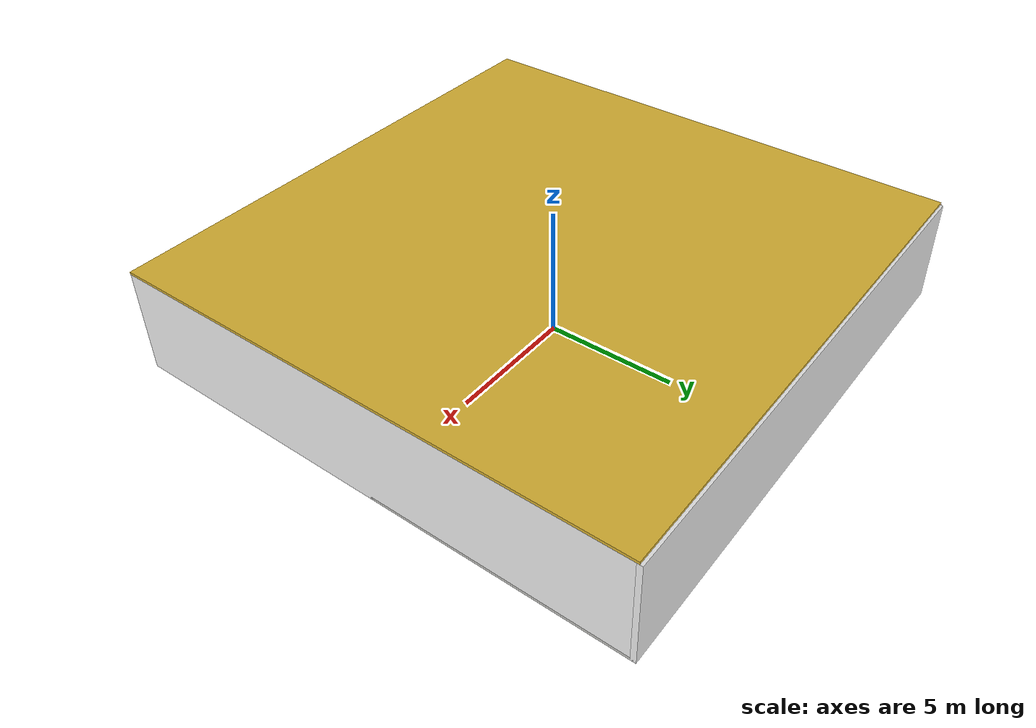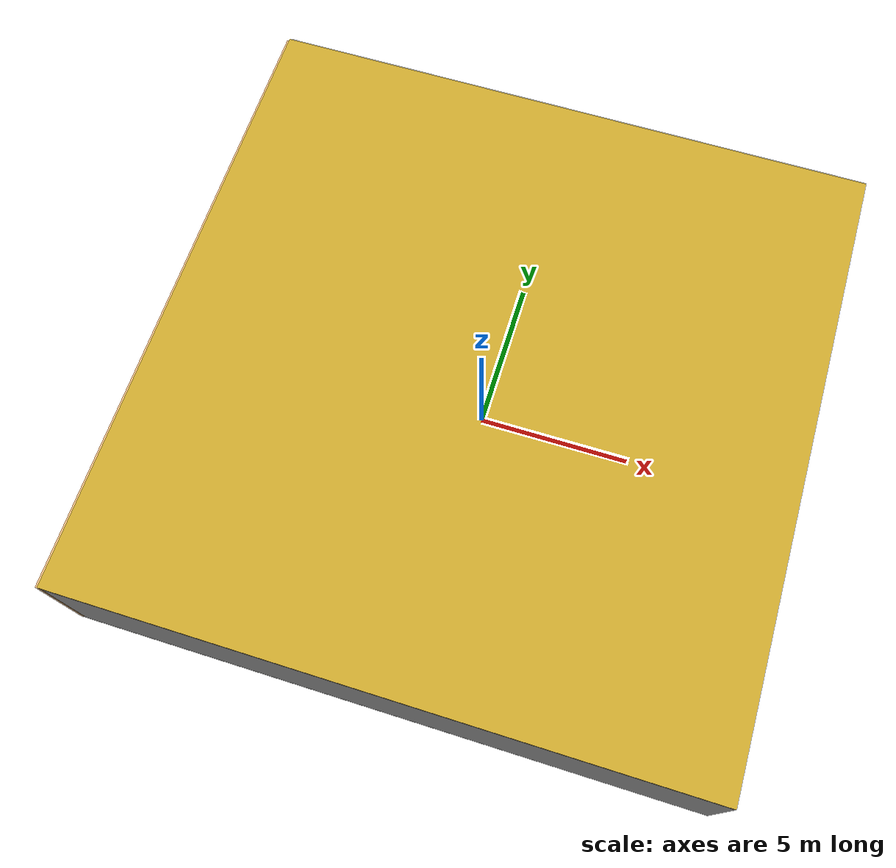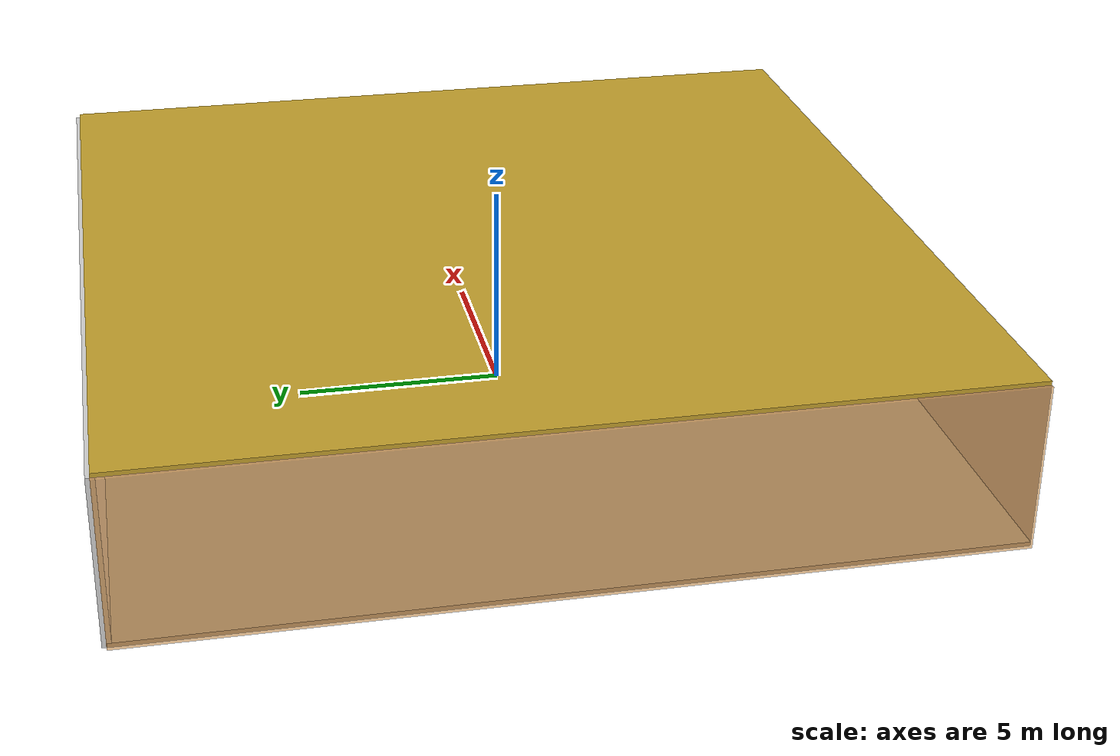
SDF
<sdf version="1.4">
 <world name="default">
  <physics type="ode">
   <max_step_size>0.001</max_step_size>
   <real_time_factor>1</real_time_factor>
   <real_time_update_rate>1000</real_time_update_rate>
   <gravity>0 0 -9.8</gravity>
  </physics>
  <scene><ambient>0.4 0.4 0.4 1</ambient><background>0.7 0.7 0.7 1</background><shadows>1</shadows></scene>
  <model name="Surrounding">
   <static>1</static>
   <link name="Ceiling">
    <collision name="Ceiling_Collision"><geometry><box><size>20 20 0.1</size></box></geometry></collision>
    <visual name="Ceiling_Visual">
     <geometry><box><size>20 20 0.1</size></box></geometry>
     <material>
      <script><uri>file://media/materials/scripts/gazebo.material</uri><name>Gazebo/Gold</name></script>
     </material>
    </visual>
    <pose>0 0 4.05 0 0 0</pose>
   </link>
   <link name="Wall_South">
    <collision name="Wall_South_Collision">
     <geometry><box><size>20 0 4</size></box></geometry>
     <pose>0 0 2 0 -0 0</pose>
    </collision>
    <visual name="Wall_South_Visual">
     <pose>0 0 2 0 -0 0</pose>
     <geometry><box><size>20 0 4</size></box></geometry>
     <material>
      <script><uri>file://media/materials/scripts/gazebo.material</uri><name>Gazebo/Pioneer2Body</name></script>
     </material>
    </visual>
    <velocity_decay><linear>0</linear><angular>0</angular></velocity_decay>
    <pose>0 -10 0 0 -0 0</pose>
   </link>
   <link name="Wall_East">
    <collision name="Wall_21_Collision">
     <geometry><box><size>20 0 4</size></box></geometry>
     <pose>0 0 2 0 -0 0</pose>
    </collision>
    <visual name="Wall_21_Visual">
     <pose>0 0 2 0 -0 0</pose>
     <geometry><box><size>20 0 4</size></box></geometry>
     <material>
      <script><uri>file://media/materials/scripts/gazebo.material</uri><name>Gazebo/WhiteGlow</name></script>
     </material>
    </visual>
    <velocity_decay><linear>0</linear><angular>0</angular></velocity_decay>
    <pose>10 0 0 0 -0 1.5708</pose>
   </link>
   <link name="Wall_North">
    <collision name="Wall_22_Collision">
     <geometry><box><size>20 0.2 4</size></box></geometry>
     <pose>0 0 2 0 -0 0</pose>
    </collision>
    <visual name="Wall_22_Visual">
     <pose>0 0 2 0 -0 0</pose>
     <geometry><box><size>20 0.2 4</size></box></geometry>
     <material>
      <script><uri>file://media/materials/scripts/gazebo.material</uri><name>Gazebo/White</name></script>
     </material>
    </visual>
    <velocity_decay><linear>0</linear><angular>0</angular></velocity_decay>
    <pose>0 10 0 0 -0 0</pose>
   </link>
   <link name="Wall_West">
    <collision name="Wall_23_Collision">
     <geometry><box><size>20 0.2 4</size></box></geometry>
     <pose>0 0 2 0 -0 0</pose>
    </collision>
    <visual name="Wall_23_Visual">
     <pose>0 0 2 0 -0 0</pose>
     <geometry><box><size>20 0.2 4</size></box></geometry>
     <material>
      <script>
       <uri>file://media/materials/scripts/gazebo.material</uri>
       <name>Gazebo/OrangeTransparent</name>
      </script>
     </material>
    </visual>
    <velocity_decay><linear>0</linear><angular>0</angular></velocity_decay>
    <pose>-10 0 0 0 0 -1.5708</pose>
   </link>
   <link name="Ground_link">
    <collision name="collision">
     <pose>0 0 .05 0 -0 0</pose>
     <geometry><box><size>20 20 0.1</size></box></geometry>
    </collision>
    <visual name="visual">
     <pose>0 0 .05 0 -0 0</pose>
     <geometry><box><size>20 20 0.1</size></box></geometry>
     <material>
      <script><uri>file://media/materials/scripts/gazebo.material</uri><name>Gazebo/CeilingTiled</name></script>
     </material>
    </visual>
   </link>
   <static>1</static>
  </model>
  <spherical_coordinates>
   <surface_model>EARTH_WGS84</surface_model>
   <latitude_deg>0</latitude_deg>
   <longitude_deg>0</longitude_deg>
   <elevation>0</elevation>
   <heading_deg>0</heading_deg>
  </spherical_coordinates>
  <light name="lightball_0" type="diffuse">
   <diffuse>0.8 0.8 0.8 1</diffuse>
   <specular>0.2 0.2 0.2 1</specular>
   <attenuation>
    <range>100</range>
    <constant>0.7</constant>
    <linear>0.01</linear>
    <quadratic>0.001</quadratic>
   </attenuation>
   <direction>-0.5 0.1 -0.9</direction>
   <pose>8.94581394256 -3.08565822738 2.88062909204 0 0 0</pose>
  </light>
  <light name="lightball_1" type="diffuse">
   <diffuse>0.8 0.8 0.8 1</diffuse>
   <specular>0.2 0.2 0.2 1</specular>
   <attenuation>
    <range>100</range>
    <constant>0.7</constant>
    <linear>0.01</linear>
    <quadratic>0.001</quadratic>
   </attenuation>
   <direction>-0.5 0.1 -0.9</direction>
   <pose>-2.65568922496 2.87752468015 1.84563653576 0 0 0</pose>
  </light>
  <light name="lightball_2" type="diffuse">
   <diffuse>0.8 0.8 0.8 1</diffuse>
   <specular>0.2 0.2 0.2 1</specular>
   <attenuation>
    <range>100</range>
    <constant>0.7</constant>
    <linear>0.01</linear>
    <quadratic>0.001</quadratic>
   </attenuation>
   <direction>-0.5 0.1 -0.9</direction>
   <pose>-0.00465751306544 7.79251139717 2.53065628824 0 0 0</pose>
  </light>
  <light name="lightball_3" type="diffuse">
   <diffuse>0.8 0.8 0.8 1</diffuse>
   <specular>0.2 0.2 0.2 1</specular>
   <attenuation>
    <range>100</range>
    <constant>0.7</constant>
    <linear>0.01</linear>
    <quadratic>0.001</quadratic>
   </attenuation>
   <direction>-0.5 0.1 -0.9</direction>
   <pose>-7.45012384546 5.52185597329 3.29753032213 0 0 0</pose>
  </light>
  <light name="lightball_4" type="diffuse">
   <diffuse>0.8 0.8 0.8 1</diffuse>
   <specular>0.2 0.2 0.2 1</specular>
   <attenuation>
    <range>100</range>
    <constant>0.7</constant>
    <linear>0.01</linear>
    <quadratic>0.001</quadratic>
   </attenuation>
   <direction>-0.5 0.1 -0.9</direction>
   <pose>3.41430257071 -6.25136601381 3.38712950309 0 0 0</pose>
  </light>
  <light name="lightball_5" type="diffuse">
   <diffuse>0.8 0.8 0.8 1</diffuse>
   <specular>0.2 0.2 0.2 1</specular>
   <attenuation>
    <range>100</range>
    <constant>0.7</constant>
    <linear>0.01</linear>
    <quadratic>0.001</quadratic>
   </attenuation>
   <direction>-0.5 0.1 -0.9</direction>
   <pose>2.1065385006 6.24124352321 2.45145100497 0 0 0</pose>
  </light>
  <light name="lightball_6" type="diffuse">
   <diffuse>0.8 0.8 0.8 1</diffuse>
   <specular>0.2 0.2 0.2 1</specular>
   <attenuation>
    <range>100</range>
    <constant>0.7</constant>
    <linear>0.01</linear>
    <quadratic>0.001</quadratic>
   </attenuation>
   <direction>-0.5 0.1 -0.9</direction>
   <pose>9.15508148263 -8.45274181568 3.25610775757 0 0 0</pose>
  </light>
  <include>
   <uri>model://construction_cone</uri>
   <pose>-2.19534157521 -4.19075930366 0 0 0 1.86877013691</pose>
  </include>
  <include><uri>model://cabinet</uri><pose>-1.79171353224 3.74236785887 0 0 0 2.39023343984</pose></include>
  <include><uri>model://table</uri><pose>4.78412066927 8.26506221944 0 0 0 2.3830961609</pose></include>
 </world>
</sdf>

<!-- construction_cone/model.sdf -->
<sdf version="1.5">
  <model name="Construction Cone">
    <link name="link">
      <collision name="collision">
        <geometry>
          <mesh>
            <scale>10 10 10</scale>
            <uri>file://isr-testbed/construction_cone/meshes/construction_cone.dae</uri>
          </mesh>
        </geometry>
      </collision>
      <visual name="visual">
        <geometry>
          <mesh>
            <scale>10 10 10</scale>
            <uri>file://isr-testbed/construction_cone/meshes/construction_cone.dae</uri>
          </mesh>
        </geometry>
      </visual>
    </link>
  </model>
</sdf>

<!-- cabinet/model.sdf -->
<sdf version="1.5">
  <model name="cabinet">
    <static>true</static>
    <link name="cabinet_bottom_plate">
      <inertial>
        <pose>0 0 -1 0 0 0</pose>
        <inertia>
          <ixx>2.050000</ixx>
          <ixy>0</ixy>
          <ixz>0</ixz>
          <iyy>2.050000</iyy>
          <iyz>0</iyz>
          <izz>2.050000</izz>
        </inertia>
        <mass>25.000000</mass>
      </inertial>
      <collision name="cabinet_bottom_plate_geom">
        <pose>0 0 0.010000 0 0 0</pose>
        <geometry>
          <box>
            <size>0.450000 0.450000 0.020000</size>
          </box>
        </geometry>
      </collision>
      <visual name="cabinet_bottom_plate_geom_visual">
        <pose>0 0 0.010000 0 0 0</pose>
        <geometry>
          <box>
            <size>0.450000 0.450000 0.020000</size>
          </box>
        </geometry>
        <material>
          <script>
            <uri>model://media/materials/scripts/gazebo.material</uri>
            <name>Gazebo/Wood</name>
          </script>
        </material>
      </visual>
      <collision name="cabinet_bottom_plate_geom_cabinet_back_plate">
        <pose>0.235000 0 0.510000 0 0 0</pose>
        <geometry>
          <box>
            <size>0.020000 0.450000 1.020000</size>
          </box>
        </geometry>
      </collision>
      <visual name="cabinet_bottom_plate_geom_cabinet_back_plate_visual">
        <pose>0.235000 0 0.510000 0 0 0</pose>
        <geometry>
          <box>
            <size>0.020000 0.450000 1.020000</size>
          </box>
        </geometry>
        <material>
          <script>
            <uri>model://media/materials/scripts/gazebo.material</uri>
            <name>Gazebo/Wood</name>
          </script>
        </material>
      </visual>
      <collision name="cabinet_bottom_plate_geom_cabinet_left_plate">
        <pose>0 0.235000 0.510000 0 0 0</pose>
        <geometry>
          <box>
            <size>0.450000 0.020000 1.020000</size>
          </box>
        </geometry>
      </collision>
      <visual name="cabinet_bottom_plate_geom_cabinet_left_plate_visual">
        <pose>0 0.235000 0.510000 0 0 0</pose>
        <geometry>
          <box>
            <size>0.450000 0.020000 1.020000</size>
          </box>
        </geometry>
        <material>
          <script>
            <uri>model://media/materials/scripts/gazebo.material</uri>
            <name>Gazebo/Wood</name>
          </script>
        </material>
      </visual>
      <collision name="cabinet_bottom_plate_geom_cabinet_middle_plate">
        <pose>0 0 0.510000 0 0 0</pose>
        <geometry>
          <box>
            <size>0.450000 0.450000 0.020000</size>
          </box>
        </geometry>
      </collision>
      <visual name="cabinet_bottom_plate_geom_cabinet_middle_plate_visual">
        <pose>0 0 0.510000 0 0 0</pose>
        <geometry>
          <box>
            <size>0.450000 0.450000 0.020000</size>
          </box>
        </geometry>
        <material>
          <script>
            <uri>model://media/materials/scripts/gazebo.material</uri>
            <name>Gazebo/Wood</name>
          </script>
        </material>
      </visual>
      <collision name="cabinet_bottom_plate_geom_cabinet_right_plate">
        <pose>0 -0.235000 0.510000 0 0 0</pose>
        <geometry>
          <box>
            <size>0.450000 0.020000 1.020000</size>
          </box>
        </geometry>
      </collision>
      <visual name="cabinet_bottom_plate_geom_cabinet_right_plate_visual">
        <pose>0 -0.235000 0.510000 0 0 0</pose>
        <geometry>
          <box>
            <size>0.450000 0.020000 1.020000</size>
          </box>
        </geometry>
        <material>
          <script>
            <uri>model://media/materials/scripts/gazebo.material</uri>
            <name>Gazebo/Wood</name>
          </script>
        </material>
      </visual>
      <collision name="cabinet_bottom_plate_geom_cabinet_top_plate">
        <pose>0 0 1.010000 0 0 0</pose>
        <geometry>
          <box>
            <size>0.450000 0.450000 0.020000</size>
          </box>
        </geometry>
      </collision>
      <visual name="cabinet_bottom_plate_geom_cabinet_top_plate_visual">
        <pose>0 0 1.010000 0 0 0</pose>
        <geometry>
          <box>
            <size>0.450000 0.450000 0.020000</size>
          </box>
        </geometry>
        <material>
          <script>
            <uri>model://media/materials/scripts/gazebo.material</uri>
            <name>Gazebo/Wood</name>
          </script>
        </material>
      </visual>
    </link>
  </model>
</sdf>

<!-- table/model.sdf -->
<sdf version="1.5">
  <model name="table">
    <static>true</static>
    <link name="link">
      <collision name="surface">
        <pose>0 0 1.0 0 0 0</pose>
        <geometry>
          <box>
            <size>1.5 0.8 0.03</size>
          </box>
        </geometry>
        <surface>
          <friction>
            <ode>
              <mu>0.6</mu>
              <mu2>0.6</mu2>
            </ode>
          </friction>
        </surface>
      </collision>
      <visual name="visual1">
        <pose>0 0 1.0 0 0 0</pose>
        <geometry>
          <box>
            <size>1.5 0.8 0.03</size>
          </box>
        </geometry>
        <material>
          <script>
            <uri>model://media/materials/scripts/gazebo.material</uri>
            <name>Gazebo/Wood</name>
          </script>
        </material>
      </visual>
      <collision name="front_left_leg">
        <pose>0.68 0.38 0.5 0 0 0</pose>
        <geometry>
          <cylinder>
            <radius>0.02</radius>
            <length>1.0</length>
          </cylinder>
        </geometry>
      </collision>
      <visual name="front_left_leg">
        <pose>0.68 0.38 0.5 0 0 0</pose>
        <geometry>
          <cylinder>
            <radius>0.02</radius>
            <length>1.0</length>
          </cylinder>
        </geometry>
        <material>
          <script>
            <uri>model://media/materials/scripts/gazebo.material</uri>
            <name>Gazebo/Grey</name>
          </script>
        </material>
      </visual>
      <collision name="front_right_leg">
        <pose>0.68 -0.38 0.5 0 0 0</pose>
        <geometry>
          <cylinder>
            <radius>0.02</radius>
            <length>1.0</length>
          </cylinder>
        </geometry>
      </collision>
      <visual name="front_right_leg">
        <pose>0.68 -0.38 0.5 0 0 0</pose>
        <geometry>
          <cylinder>
            <radius>0.02</radius>
            <length>1.0</length>
          </cylinder>
        </geometry>
        <material>
          <script>
            <uri>model://media/materials/scripts/gazebo.material</uri>
            <name>Gazebo/Grey</name>
          </script>
        </material>
      </visual>
      <collision name="back_right_leg">
        <pose>-0.68 -0.38 0.5 0 0 0</pose>
        <geometry>
          <cylinder>
            <radius>0.02</radius>
            <length>1.0</length>
          </cylinder>
        </geometry>
      </collision>
      <visual name="back_right_leg">
        <pose>-0.68 -0.38 0.5 0 0 0</pose>
        <geometry>
          <cylinder>
            <radius>0.02</radius>
            <length>1.0</length>
          </cylinder>
        </geometry>
        <material>
          <script>
            <uri>model://media/materials/scripts/gazebo.material</uri>
            <name>Gazebo/Grey</name>
          </script>
        </material>
      </visual>
      <collision name="back_left_leg">
        <pose>-0.68 0.38 0.5 0 0 0</pose>
        <geometry>
          <cylinder>
            <radius>0.02</radius>
            <length>1.0</length>
          </cylinder>
        </geometry>
      </collision>
      <visual name="back_left_leg">
        <pose>-0.68 0.38 0.5 0 0 0</pose>
        <geometry>
          <cylinder>
            <radius>0.02</radius>
            <length>1.0</length>
          </cylinder>
        </geometry>
        <material>
          <script>
            <uri>model://media/materials/scripts/gazebo.material</uri>
            <name>Gazebo/Grey</name>
          </script>
        </material>
      </visual>
    </link>
  </model>
</sdf>
